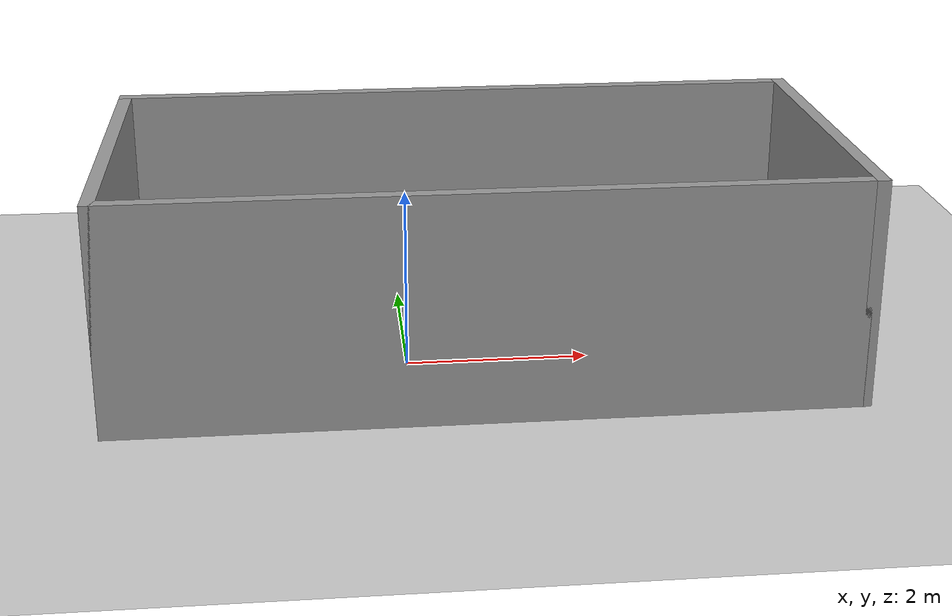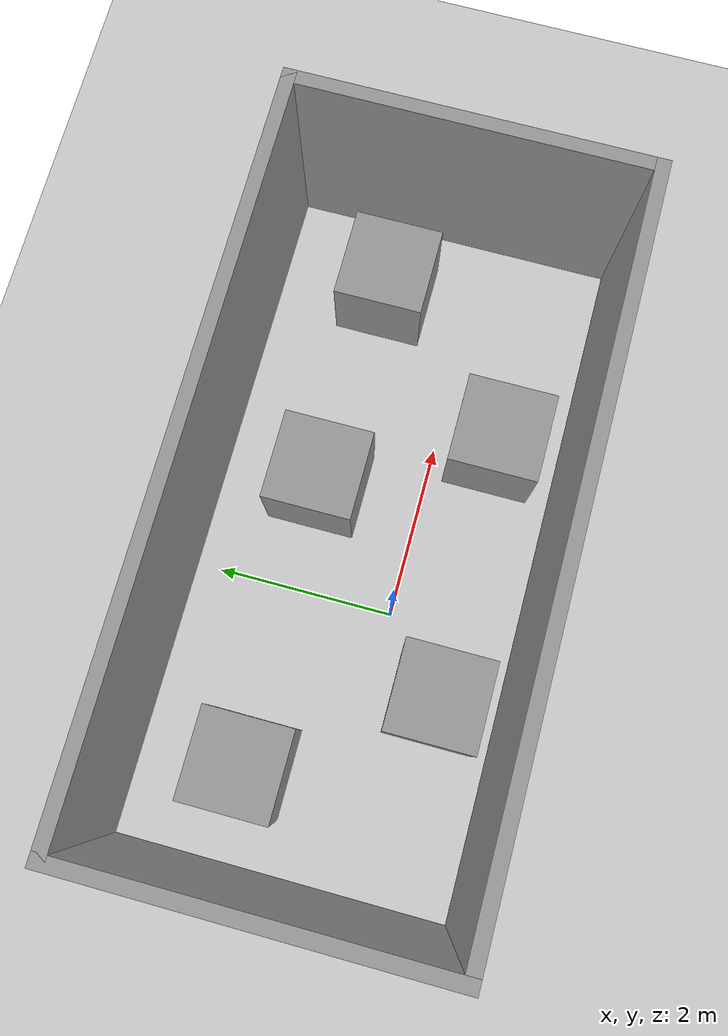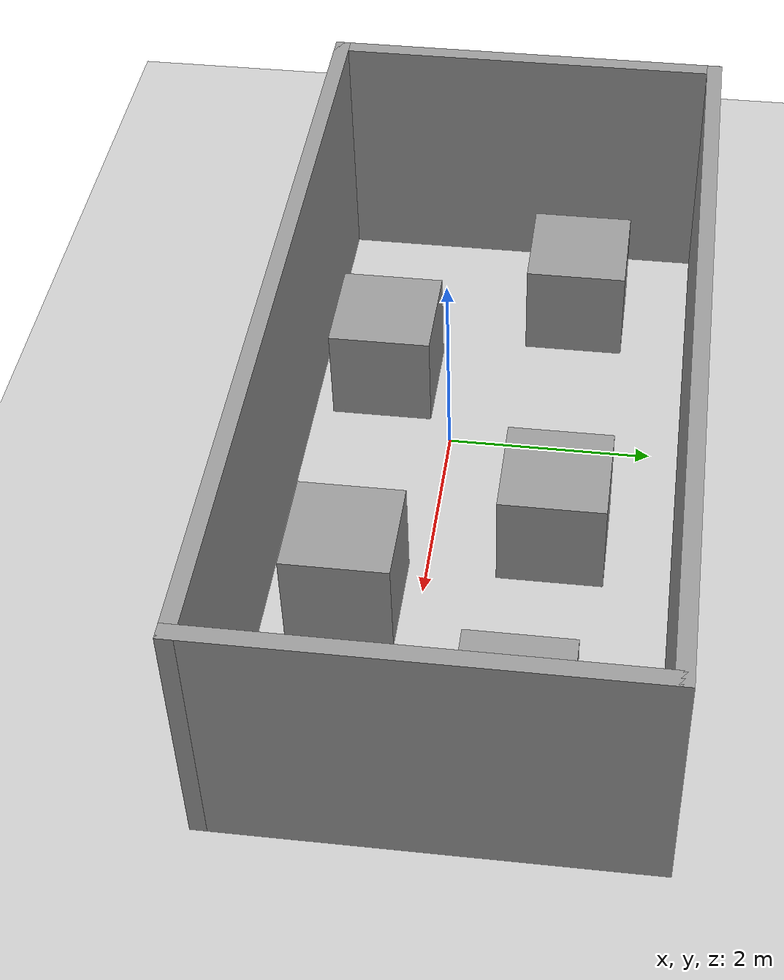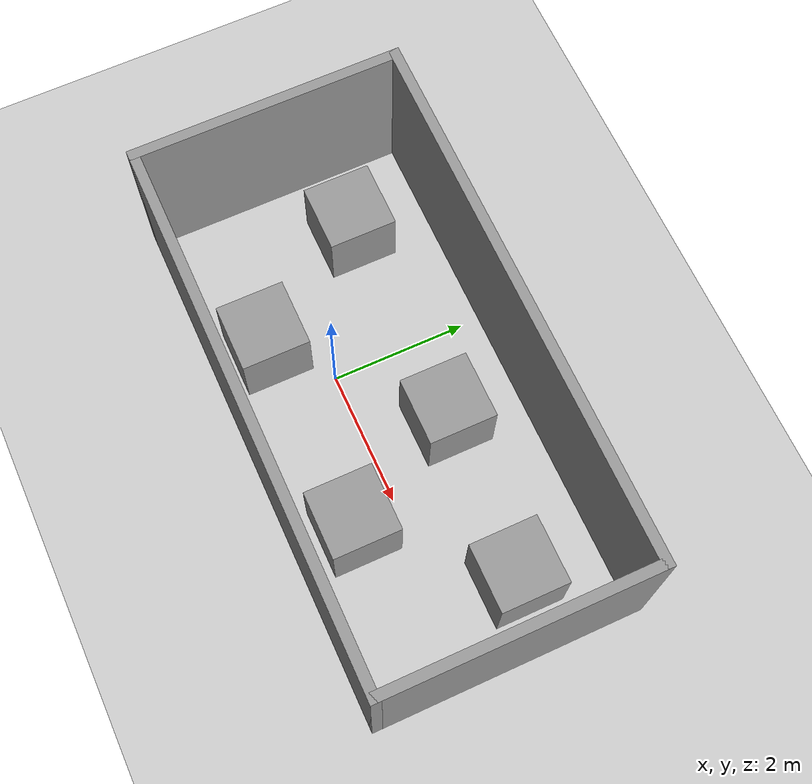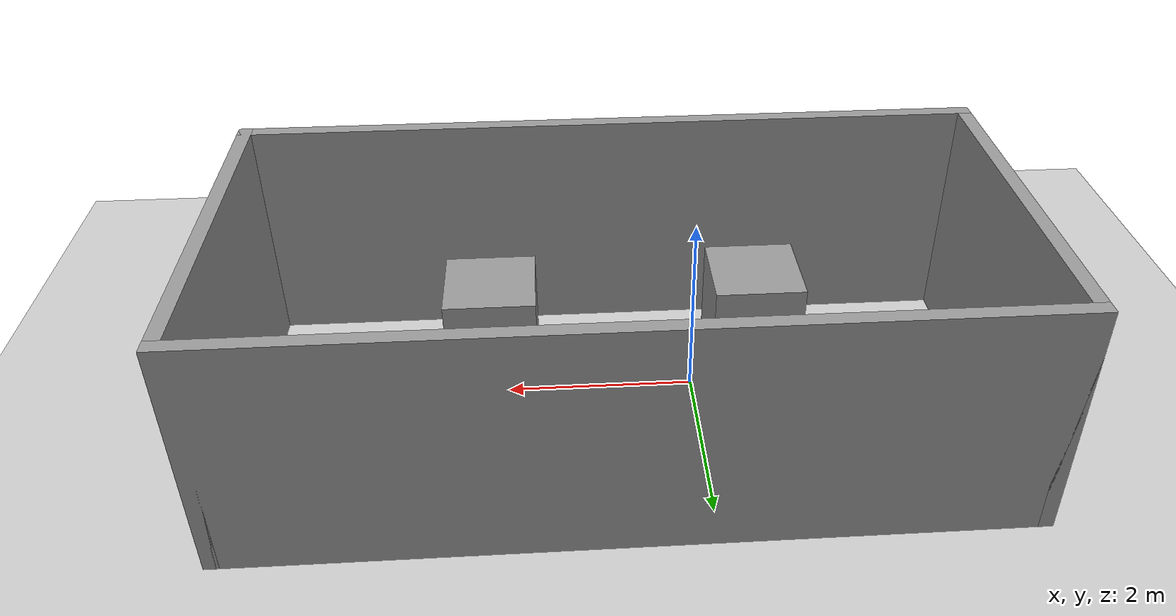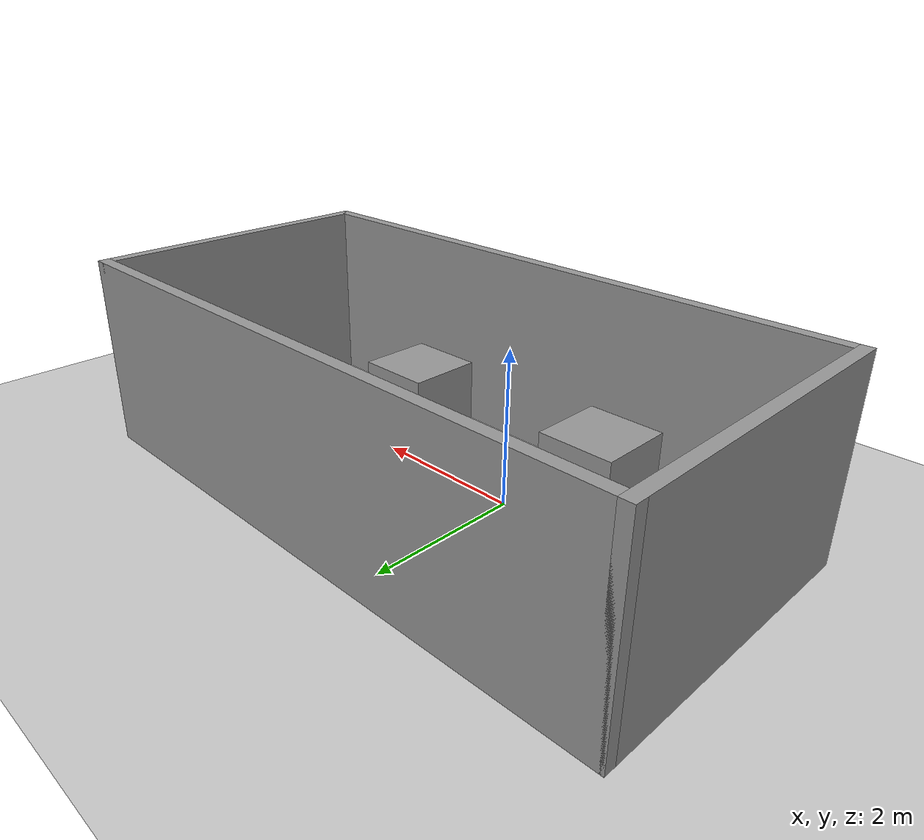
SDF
<sdf version="1.7">
 <world name="default">
  <light name="sun" type="directional">
   <pose>0 0 10 0 -0 0</pose>
   <diffuse>0.8 0.8 0.8 1</diffuse>
   <specular>0.2 0.2 0.2 1</specular>
   <attenuation>
    <range>1000</range>
    <constant>0.9</constant>
    <linear>0.01</linear>
    <quadratic>0.001</quadratic>
   </attenuation>
   <direction>-0.5 0.1 -0.9</direction>
   <spot><inner_angle>0</inner_angle><outer_angle>0</outer_angle><falloff>0</falloff></spot>
  </light>
  <model name="ground_plane">
   <static>1</static>
   <link name="link">
    <collision name="collision">
     <geometry><plane><normal>0 0 1</normal><size>100 100</size></plane></geometry>
     <surface>
      <contact><collide_bitmask>65535</collide_bitmask></contact>
      <friction><ode><mu>100</mu><mu2>50</mu2></ode></friction>
     </surface>
    </collision>
    <visual name="visual">
     <cast_shadows>0</cast_shadows>
     <geometry><plane><normal>0 0 1</normal><size>100 100</size></plane></geometry>
     <material>
      <script><uri>file://media/materials/scripts/gazebo.material</uri><name>Gazebo/Grey</name></script>
     </material>
    </visual>
   </link>
  </model>
  <gravity>0 0 -9.8</gravity>
  <magnetic_field>6e-06 2.3e-05 -4.2e-05</magnetic_field>
  <atmosphere type="adiabatic"/>
  <physics type="ode">
   <max_step_size>0.001</max_step_size>
   <real_time_factor>1</real_time_factor>
   <real_time_update_rate>1000</real_time_update_rate>
  </physics>
  <scene><ambient>0.4 0.4 0.4 1</ambient><background>0.7 0.7 0.7 1</background><shadows>1</shadows></scene>
  <spherical_coordinates>
   <surface_model>EARTH_WGS84</surface_model>
   <latitude_deg>0</latitude_deg>
   <longitude_deg>0</longitude_deg>
   <elevation>0</elevation>
   <heading_deg>0</heading_deg>
  </spherical_coordinates>
  <model name="lablab">
   <pose>0.786638 0.429312 0 0 -0 0</pose>
   <link name="Wall_11">
    <collision name="Wall_11_Collision">
     <geometry><box><size>8 0.15 2.5</size></box></geometry>
     <pose>0 0 1.25 0 -0 0</pose>
    </collision>
    <visual name="Wall_11_Visual">
     <pose>0 0 1.25 0 -0 0</pose>
     <geometry><box><size>8 0.15 2.5</size></box></geometry>
     <material>
      <script><uri>file://media/materials/scripts/gazebo.material</uri><name>Gazebo/Grey</name></script>
      <ambient>1 1 1 1</ambient>
     </material>
     <meta><layer>0</layer></meta>
    </visual>
    <pose>0 1.925 0 0 -0 0</pose>
   </link>
   <link name="Wall_12">
    <collision name="Wall_12_Collision">
     <geometry><box><size>4 0.15 2.5</size></box></geometry>
     <pose>0 0 1.25 0 -0 0</pose>
    </collision>
    <visual name="Wall_12_Visual">
     <pose>0 0 1.25 0 -0 0</pose>
     <geometry><box><size>4 0.15 2.5</size></box></geometry>
     <material>
      <script><uri>file://media/materials/scripts/gazebo.material</uri><name>Gazebo/Grey</name></script>
      <ambient>1 1 1 1</ambient>
     </material>
     <meta><layer>0</layer></meta>
    </visual>
    <pose>3.925 -0 0 0 -0 -1.5708</pose>
   </link>
   <link name="Wall_8">
    <collision name="Wall_8_Collision">
     <geometry><box><size>4 0.15 2.5</size></box></geometry>
     <pose>0 0 1.25 0 -0 0</pose>
    </collision>
    <visual name="Wall_8_Visual">
     <pose>0 0 1.25 0 -0 0</pose>
     <geometry><box><size>4 0.15 2.5</size></box></geometry>
     <material>
      <script><uri>file://media/materials/scripts/gazebo.material</uri><name>Gazebo/Grey</name></script>
      <ambient>1 1 1 1</ambient>
     </material>
     <meta><layer>0</layer></meta>
    </visual>
    <pose>-3.925 -0 0 0 -0 -1.5708</pose>
   </link>
   <link name="Wall_9">
    <collision name="Wall_9_Collision">
     <geometry><box><size>8 0.15 2.5</size></box></geometry>
     <pose>0 0 1.25 0 -0 0</pose>
    </collision>
    <visual name="Wall_9_Visual">
     <pose>0 0 1.25 0 -0 0</pose>
     <geometry><box><size>8 0.15 2.5</size></box></geometry>
     <material>
      <script><uri>file://media/materials/scripts/gazebo.material</uri><name>Gazebo/Grey</name></script>
      <ambient>1 1 1 1</ambient>
     </material>
     <meta><layer>0</layer></meta>
    </visual>
    <pose>0 -1.925 0 0 -0 0</pose>
   </link>
   <static>1</static>
  </model>
  <model name="unit_box">
   <pose>-1.99134 1.11717 0.499995 0 1e-05 0</pose>
   <link name="link">
    <inertial>
     <mass>1</mass>
     <inertia>
      <ixx>0.166667</ixx>
      <ixy>0</ixy>
      <ixz>0</ixz>
      <iyy>0.166667</iyy>
      <iyz>0</iyz>
      <izz>0.166667</izz>
     </inertia>
    </inertial>
    <collision name="collision"><geometry><box><size>1 1 1</size></box></geometry></collision>
    <visual name="visual">
     <geometry><box><size>1 1 1</size></box></geometry>
     <material>
      <script><name>Gazebo/Grey</name><uri>file://media/materials/scripts/gazebo.material</uri></script>
     </material>
    </visual>
   </link>
  </model>
  <model name="unit_box_0">
   <pose>-0.783639 -0.731979 0.499995 -1e-05 -0 -0</pose>
   <link name="link">
    <inertial>
     <mass>1</mass>
     <inertia>
      <ixx>0.166667</ixx>
      <ixy>0</ixy>
      <ixz>0</ixz>
      <iyy>0.166667</iyy>
      <iyz>0</iyz>
      <izz>0.166667</izz>
     </inertia>
    </inertial>
    <collision name="collision"><geometry><box><size>1 1 1</size></box></geometry></collision>
    <visual name="visual">
     <geometry><box><size>1 1 1</size></box></geometry>
     <material>
      <script><name>Gazebo/Grey</name><uri>file://media/materials/scripts/gazebo.material</uri></script>
     </material>
    </visual>
   </link>
  </model>
  <model name="unit_box_1">
   <pose>1.25296 1.15827 0.499995 0 1e-05 0</pose>
   <link name="link">
    <inertial>
     <mass>1</mass>
     <inertia>
      <ixx>0.166667</ixx>
      <ixy>0</ixy>
      <ixz>0</ixz>
      <iyy>0.166667</iyy>
      <iyz>0</iyz>
      <izz>0.166667</izz>
     </inertia>
    </inertial>
    <collision name="collision"><geometry><box><size>1 1 1</size></box></geometry></collision>
    <visual name="visual">
     <geometry><box><size>1 1 1</size></box></geometry>
     <material>
      <script><name>Gazebo/Grey</name><uri>file://media/materials/scripts/gazebo.material</uri></script>
     </material>
    </visual>
   </link>
  </model>
  <model name="unit_box_2">
   <pose>2.17426 -0.672926 0.499995 -1e-05 -0 0</pose>
   <link name="link">
    <inertial>
     <mass>1</mass>
     <inertia>
      <ixx>0.166667</ixx>
      <ixy>0</ixy>
      <ixz>0</ixz>
      <iyy>0.166667</iyy>
      <iyz>0</iyz>
      <izz>0.166667</izz>
     </inertia>
    </inertial>
    <collision name="collision"><geometry><box><size>1 1 1</size></box></geometry></collision>
    <visual name="visual">
     <geometry><box><size>1 1 1</size></box></geometry>
     <material>
      <script><name>Gazebo/Grey</name><uri>file://media/materials/scripts/gazebo.material</uri></script>
     </material>
    </visual>
   </link>
  </model>
  <model name="unit_box_3">
   <pose>3.71826 1.02299 0.5 0 -0 0</pose>
   <link name="link">
    <inertial>
     <mass>1</mass>
     <inertia>
      <ixx>0.166667</ixx>
      <ixy>0</ixy>
      <ixz>0</ixz>
      <iyy>0.166667</iyy>
      <iyz>0</iyz>
      <izz>0.166667</izz>
     </inertia>
    </inertial>
    <collision name="collision"><geometry><box><size>1 1 1</size></box></geometry></collision>
    <visual name="visual">
     <geometry><box><size>1 1 1</size></box></geometry>
     <material>
      <script><name>Gazebo/Grey</name><uri>file://media/materials/scripts/gazebo.material</uri></script>
     </material>
    </visual>
   </link>
  </model>
 </world>
</sdf>
